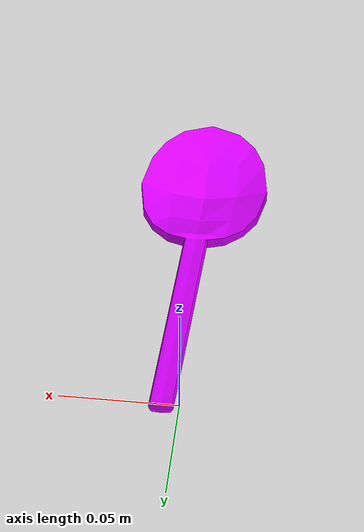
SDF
<?xml version="1.0"?>
<sdf version='1.7'>
  <model name='competition_cleanup_spoon'>
    <static>false</static>
    <link name='base_link'>
      <pose frame=''>0 0 0 0 -0 0</pose>
      <inertial>
        <pose>0.000006 -0.067802 0.036111 0 -0 0</pose>
        <mass>1</mass>

        <inertia>
          <ixx>0.000000</ixx>
          <ixy>0.000000</ixy>
          <ixz>0.000000</ixz>
          <iyy>0.000000</iyy>
          <iyz>0.000000</iyz>
          <izz>0.000000</izz>
        </inertia>
      </inertial>
      <collision name='base_link_collision'>
        <pose frame=''>0 0 0 0 -0 0</pose>
        <geometry>
          <mesh>
             <uri>model://competition_cleanup_spoon/meshes/spoon.dae</uri>
          </mesh>
        </geometry>
      </collision>
      <visual name='base_link_visual'>
        <pose frame=''>0 0 0 0 -0 0</pose>
        <geometry>
          <mesh>
            <uri>model://competition_cleanup_spoon/meshes/spoon.dae</uri>
          </mesh>
        </geometry>
      </visual>
    </link>
  </model>
</sdf>
